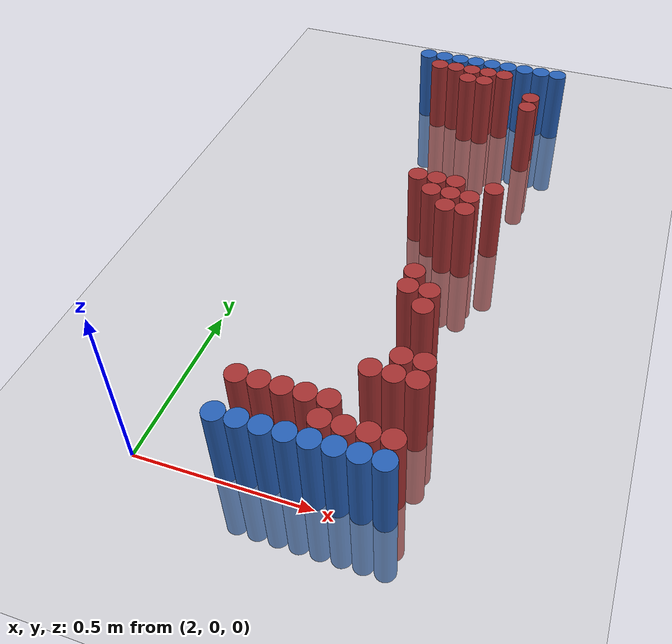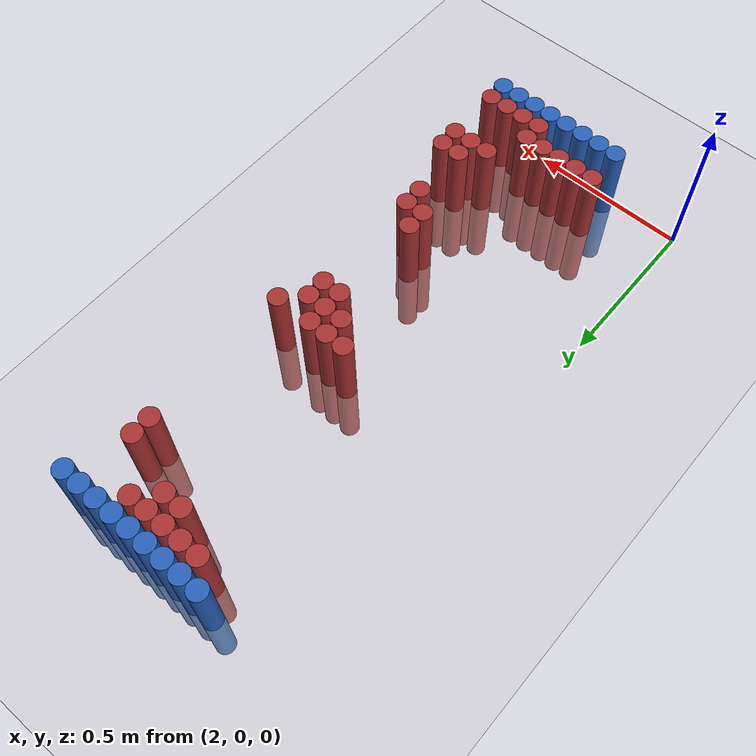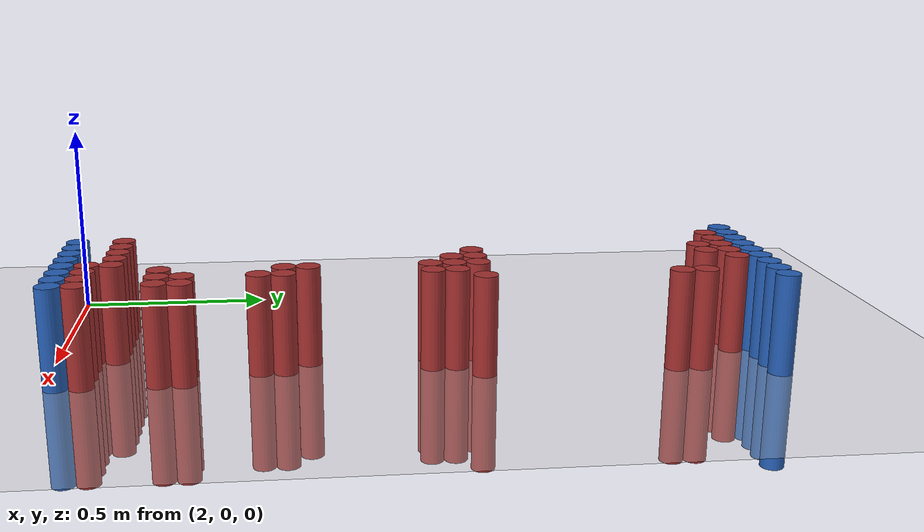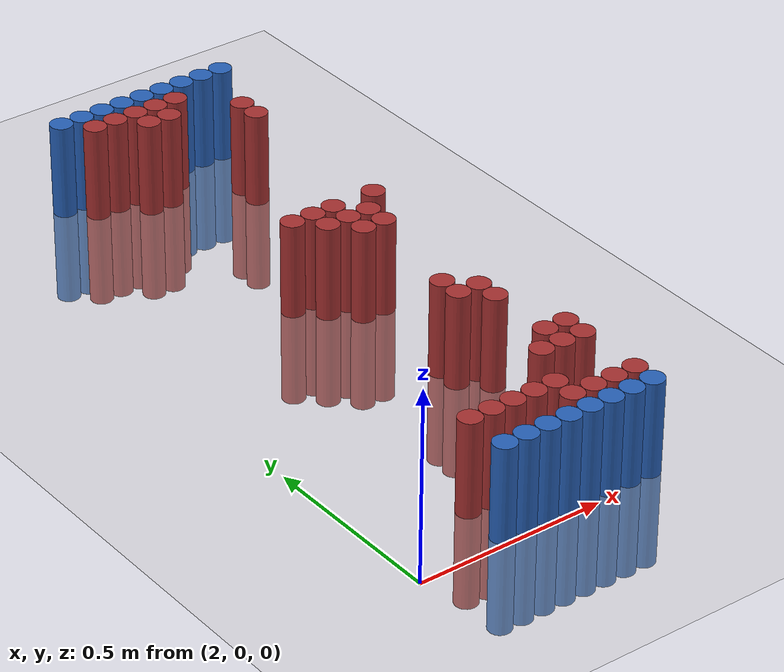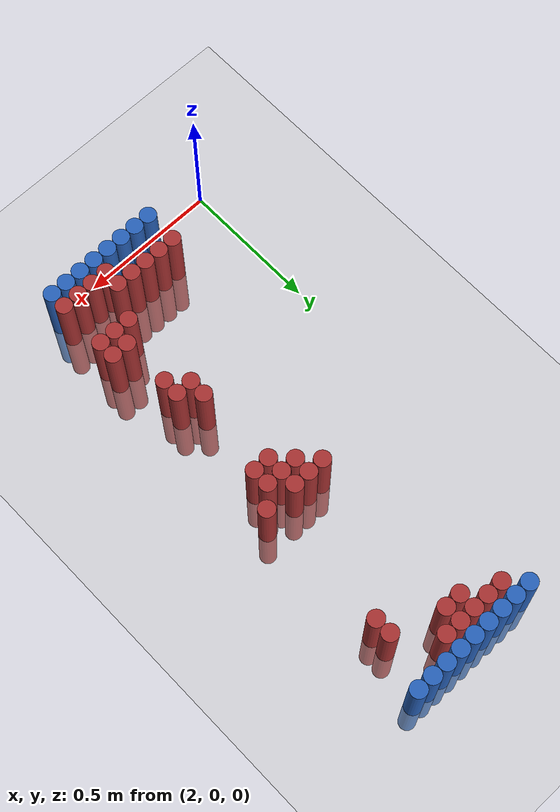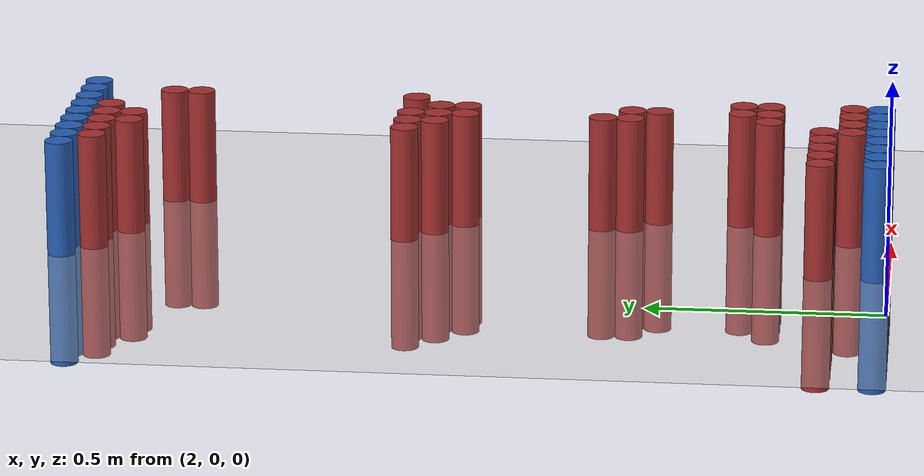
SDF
<sdf version="1.6">
 <world name="default">
  <model name="ground_plane">
   <static>1</static>
   <link name="link">
    <collision name="collision">
     <geometry><plane><normal>0 0 1</normal><size>100 100</size></plane></geometry>
     <surface><friction><ode><mu>100</mu><mu2>50</mu2></ode></friction></surface>
    </collision>
    <visual name="visual">
     <cast_shadows>0</cast_shadows>
     <geometry><plane><normal>0 0 1</normal><size>100 100</size></plane></geometry>
     <material>
      <script><uri>file://media/materials/scripts/gazebo.material</uri><name>Gazebo/Grey</name></script>
     </material>
    </visual>
   </link>
  </model>
  <model name="unit_cylinder_98">
   <static>1</static>
   <pose>2.250000 1.770000 0.000000 0.000000 0.000000 0.000000</pose>
   <link name="link">
    <inertial>
     <mass>1</mass>
     <inertia><ixx>0.145833</ixx><ixy>0</ixy><ixz>0</ixz><iyy>0.145833</iyy><iyz>0</iyz><izz>0.125</izz></inertia>
    </inertial>
    <collision name="collision">
     <geometry><cylinder><radius>0.030000</radius><length>0.5</length></cylinder></geometry>
    </collision>
    <visual name="visual">
     <geometry><cylinder><radius>0.030000</radius><length>0.5</length></cylinder></geometry>
     <material>
      <ambient>0.152000 0.379000 0.720000 1</ambient>
      <diffuse>0.152000 0.379000 0.720000 1</diffuse>
     </material>
     <material>
      <script><name>Gazebo/Grey</name><uri>file://media/materials/scripts/gazebo.material</uri></script>
     </material>
    </visual>
   </link>
  </model>
  <model name="unit_cylinder_99">
   <static>1</static>
   <pose>2.310000 1.770000 0.000000 0.000000 0.000000 0.000000</pose>
   <link name="link">
    <inertial>
     <mass>1</mass>
     <inertia><ixx>0.145833</ixx><ixy>0</ixy><ixz>0</ixz><iyy>0.145833</iyy><iyz>0</iyz><izz>0.125</izz></inertia>
    </inertial>
    <collision name="collision">
     <geometry><cylinder><radius>0.030000</radius><length>0.5</length></cylinder></geometry>
    </collision>
    <visual name="visual">
     <geometry><cylinder><radius>0.030000</radius><length>0.5</length></cylinder></geometry>
     <material>
      <ambient>0.152000 0.379000 0.720000 1</ambient>
      <diffuse>0.152000 0.379000 0.720000 1</diffuse>
     </material>
     <material>
      <script><name>Gazebo/Grey</name><uri>file://media/materials/scripts/gazebo.material</uri></script>
     </material>
    </visual>
   </link>
  </model>
  <model name="unit_cylinder_100">
   <static>1</static>
   <pose>2.370000 1.770000 0.000000 0.000000 0.000000 0.000000</pose>
   <link name="link">
    <inertial>
     <mass>1</mass>
     <inertia><ixx>0.145833</ixx><ixy>0</ixy><ixz>0</ixz><iyy>0.145833</iyy><iyz>0</iyz><izz>0.125</izz></inertia>
    </inertial>
    <collision name="collision">
     <geometry><cylinder><radius>0.030000</radius><length>0.5</length></cylinder></geometry>
    </collision>
    <visual name="visual">
     <geometry><cylinder><radius>0.030000</radius><length>0.5</length></cylinder></geometry>
     <material>
      <ambient>0.152000 0.379000 0.720000 1</ambient>
      <diffuse>0.152000 0.379000 0.720000 1</diffuse>
     </material>
     <material>
      <script><name>Gazebo/Grey</name><uri>file://media/materials/scripts/gazebo.material</uri></script>
     </material>
    </visual>
   </link>
  </model>
  <model name="unit_cylinder_101">
   <static>1</static>
   <pose>2.430000 1.770000 0.000000 0.000000 0.000000 0.000000</pose>
   <link name="link">
    <inertial>
     <mass>1</mass>
     <inertia><ixx>0.145833</ixx><ixy>0</ixy><ixz>0</ixz><iyy>0.145833</iyy><iyz>0</iyz><izz>0.125</izz></inertia>
    </inertial>
    <collision name="collision">
     <geometry><cylinder><radius>0.030000</radius><length>0.5</length></cylinder></geometry>
    </collision>
    <visual name="visual">
     <geometry><cylinder><radius>0.030000</radius><length>0.5</length></cylinder></geometry>
     <material>
      <ambient>0.152000 0.379000 0.720000 1</ambient>
      <diffuse>0.152000 0.379000 0.720000 1</diffuse>
     </material>
     <material>
      <script><name>Gazebo/Grey</name><uri>file://media/materials/scripts/gazebo.material</uri></script>
     </material>
    </visual>
   </link>
  </model>
  <model name="unit_cylinder_102">
   <static>1</static>
   <pose>2.490000 1.770000 0.000000 0.000000 0.000000 0.000000</pose>
   <link name="link">
    <inertial>
     <mass>1</mass>
     <inertia><ixx>0.145833</ixx><ixy>0</ixy><ixz>0</ixz><iyy>0.145833</iyy><iyz>0</iyz><izz>0.125</izz></inertia>
    </inertial>
    <collision name="collision">
     <geometry><cylinder><radius>0.030000</radius><length>0.5</length></cylinder></geometry>
    </collision>
    <visual name="visual">
     <geometry><cylinder><radius>0.030000</radius><length>0.5</length></cylinder></geometry>
     <material>
      <ambient>0.152000 0.379000 0.720000 1</ambient>
      <diffuse>0.152000 0.379000 0.720000 1</diffuse>
     </material>
     <material>
      <script><name>Gazebo/Grey</name><uri>file://media/materials/scripts/gazebo.material</uri></script>
     </material>
    </visual>
   </link>
  </model>
  <model name="unit_cylinder_103">
   <static>1</static>
   <pose>2.550000 1.770000 0.000000 0.000000 0.000000 0.000000</pose>
   <link name="link">
    <inertial>
     <mass>1</mass>
     <inertia><ixx>0.145833</ixx><ixy>0</ixy><ixz>0</ixz><iyy>0.145833</iyy><iyz>0</iyz><izz>0.125</izz></inertia>
    </inertial>
    <collision name="collision">
     <geometry><cylinder><radius>0.030000</radius><length>0.5</length></cylinder></geometry>
    </collision>
    <visual name="visual">
     <geometry><cylinder><radius>0.030000</radius><length>0.5</length></cylinder></geometry>
     <material>
      <ambient>0.152000 0.379000 0.720000 1</ambient>
      <diffuse>0.152000 0.379000 0.720000 1</diffuse>
     </material>
     <material>
      <script><name>Gazebo/Grey</name><uri>file://media/materials/scripts/gazebo.material</uri></script>
     </material>
    </visual>
   </link>
  </model>
  <model name="unit_cylinder_104">
   <static>1</static>
   <pose>2.610000 1.770000 0.000000 0.000000 0.000000 0.000000</pose>
   <link name="link">
    <inertial>
     <mass>1</mass>
     <inertia><ixx>0.145833</ixx><ixy>0</ixy><ixz>0</ixz><iyy>0.145833</iyy><iyz>0</iyz><izz>0.125</izz></inertia>
    </inertial>
    <collision name="collision">
     <geometry><cylinder><radius>0.030000</radius><length>0.5</length></cylinder></geometry>
    </collision>
    <visual name="visual">
     <geometry><cylinder><radius>0.030000</radius><length>0.5</length></cylinder></geometry>
     <material>
      <ambient>0.152000 0.379000 0.720000 1</ambient>
      <diffuse>0.152000 0.379000 0.720000 1</diffuse>
     </material>
     <material>
      <script><name>Gazebo/Grey</name><uri>file://media/materials/scripts/gazebo.material</uri></script>
     </material>
    </visual>
   </link>
  </model>
  <model name="unit_cylinder_105">
   <static>1</static>
   <pose>2.670000 1.770000 0.000000 0.000000 0.000000 0.000000</pose>
   <link name="link">
    <inertial>
     <mass>1</mass>
     <inertia><ixx>0.145833</ixx><ixy>0</ixy><ixz>0</ixz><iyy>0.145833</iyy><iyz>0</iyz><izz>0.125</izz></inertia>
    </inertial>
    <collision name="collision">
     <geometry><cylinder><radius>0.030000</radius><length>0.5</length></cylinder></geometry>
    </collision>
    <visual name="visual">
     <geometry><cylinder><radius>0.030000</radius><length>0.5</length></cylinder></geometry>
     <material>
      <ambient>0.152000 0.379000 0.720000 1</ambient>
      <diffuse>0.152000 0.379000 0.720000 1</diffuse>
     </material>
     <material>
      <script><name>Gazebo/Grey</name><uri>file://media/materials/scripts/gazebo.material</uri></script>
     </material>
    </visual>
   </link>
  </model>
  <model name="unit_cylinder_106">
   <static>1</static>
   <pose>2.730000 1.770000 0.000000 0.000000 0.000000 0.000000</pose>
   <link name="link">
    <inertial>
     <mass>1</mass>
     <inertia><ixx>0.145833</ixx><ixy>0</ixy><ixz>0</ixz><iyy>0.145833</iyy><iyz>0</iyz><izz>0.125</izz></inertia>
    </inertial>
    <collision name="collision">
     <geometry><cylinder><radius>0.030000</radius><length>0.5</length></cylinder></geometry>
    </collision>
    <visual name="visual">
     <geometry><cylinder><radius>0.030000</radius><length>0.5</length></cylinder></geometry>
     <material>
      <ambient>0.152000 0.379000 0.720000 1</ambient>
      <diffuse>0.152000 0.379000 0.720000 1</diffuse>
     </material>
     <material>
      <script><name>Gazebo/Grey</name><uri>file://media/materials/scripts/gazebo.material</uri></script>
     </material>
    </visual>
   </link>
  </model>
  <model name="unit_cylinder_126">
   <static>1</static>
   <pose>2.310000 1.710000 0.000000 0.000000 0.000000 0.000000</pose>
   <link name="link">
    <inertial>
     <mass>1</mass>
     <inertia><ixx>0.145833</ixx><ixy>0</ixy><ixz>0</ixz><iyy>0.145833</iyy><iyz>0</iyz><izz>0.125</izz></inertia>
    </inertial>
    <collision name="collision">
     <geometry><cylinder><radius>0.030000</radius><length>0.5</length></cylinder></geometry>
    </collision>
    <visual name="visual">
     <geometry><cylinder><radius>0.030000</radius><length>0.5</length></cylinder></geometry>
     <material>
      <ambient>0.648000 0.192000 0.192000 1</ambient>
      <diffuse>0.648000 0.192000 0.192000 1</diffuse>
     </material>
     <material>
      <script><name>Gazebo/Grey</name><uri>file://media/materials/scripts/gazebo.material</uri></script>
     </material>
    </visual>
   </link>
  </model>
  <model name="unit_cylinder_127">
   <static>1</static>
   <pose>2.370000 1.710000 0.000000 0.000000 0.000000 0.000000</pose>
   <link name="link">
    <inertial>
     <mass>1</mass>
     <inertia><ixx>0.145833</ixx><ixy>0</ixy><ixz>0</ixz><iyy>0.145833</iyy><iyz>0</iyz><izz>0.125</izz></inertia>
    </inertial>
    <collision name="collision">
     <geometry><cylinder><radius>0.030000</radius><length>0.5</length></cylinder></geometry>
    </collision>
    <visual name="visual">
     <geometry><cylinder><radius>0.030000</radius><length>0.5</length></cylinder></geometry>
     <material>
      <ambient>0.648000 0.192000 0.192000 1</ambient>
      <diffuse>0.648000 0.192000 0.192000 1</diffuse>
     </material>
     <material>
      <script><name>Gazebo/Grey</name><uri>file://media/materials/scripts/gazebo.material</uri></script>
     </material>
    </visual>
   </link>
  </model>
  <model name="unit_cylinder_128">
   <static>1</static>
   <pose>2.430000 1.710000 0.000000 0.000000 0.000000 0.000000</pose>
   <link name="link">
    <inertial>
     <mass>1</mass>
     <inertia><ixx>0.145833</ixx><ixy>0</ixy><ixz>0</ixz><iyy>0.145833</iyy><iyz>0</iyz><izz>0.125</izz></inertia>
    </inertial>
    <collision name="collision">
     <geometry><cylinder><radius>0.030000</radius><length>0.5</length></cylinder></geometry>
    </collision>
    <visual name="visual">
     <geometry><cylinder><radius>0.030000</radius><length>0.5</length></cylinder></geometry>
     <material>
      <ambient>0.648000 0.192000 0.192000 1</ambient>
      <diffuse>0.648000 0.192000 0.192000 1</diffuse>
     </material>
     <material>
      <script><name>Gazebo/Grey</name><uri>file://media/materials/scripts/gazebo.material</uri></script>
     </material>
    </visual>
   </link>
  </model>
  <model name="unit_cylinder_129">
   <static>1</static>
   <pose>2.490000 1.710000 0.000000 0.000000 0.000000 0.000000</pose>
   <link name="link">
    <inertial>
     <mass>1</mass>
     <inertia><ixx>0.145833</ixx><ixy>0</ixy><ixz>0</ixz><iyy>0.145833</iyy><iyz>0</iyz><izz>0.125</izz></inertia>
    </inertial>
    <collision name="collision">
     <geometry><cylinder><radius>0.030000</radius><length>0.5</length></cylinder></geometry>
    </collision>
    <visual name="visual">
     <geometry><cylinder><radius>0.030000</radius><length>0.5</length></cylinder></geometry>
     <material>
      <ambient>0.648000 0.192000 0.192000 1</ambient>
      <diffuse>0.648000 0.192000 0.192000 1</diffuse>
     </material>
     <material>
      <script><name>Gazebo/Grey</name><uri>file://media/materials/scripts/gazebo.material</uri></script>
     </material>
    </visual>
   </link>
  </model>
  <model name="unit_cylinder_130">
   <static>1</static>
   <pose>2.550000 1.710000 0.000000 0.000000 0.000000 0.000000</pose>
   <link name="link">
    <inertial>
     <mass>1</mass>
     <inertia><ixx>0.145833</ixx><ixy>0</ixy><ixz>0</ixz><iyy>0.145833</iyy><iyz>0</iyz><izz>0.125</izz></inertia>
    </inertial>
    <collision name="collision">
     <geometry><cylinder><radius>0.030000</radius><length>0.5</length></cylinder></geometry>
    </collision>
    <visual name="visual">
     <geometry><cylinder><radius>0.030000</radius><length>0.5</length></cylinder></geometry>
     <material>
      <ambient>0.648000 0.192000 0.192000 1</ambient>
      <diffuse>0.648000 0.192000 0.192000 1</diffuse>
     </material>
     <material>
      <script><name>Gazebo/Grey</name><uri>file://media/materials/scripts/gazebo.material</uri></script>
     </material>
    </visual>
   </link>
  </model>
  <model name="unit_cylinder_135">
   <static>1</static>
   <pose>2.430000 1.650000 0.000000 0.000000 0.000000 0.000000</pose>
   <link name="link">
    <inertial>
     <mass>1</mass>
     <inertia><ixx>0.145833</ixx><ixy>0</ixy><ixz>0</ixz><iyy>0.145833</iyy><iyz>0</iyz><izz>0.125</izz></inertia>
    </inertial>
    <collision name="collision">
     <geometry><cylinder><radius>0.030000</radius><length>0.5</length></cylinder></geometry>
    </collision>
    <visual name="visual">
     <geometry><cylinder><radius>0.030000</radius><length>0.5</length></cylinder></geometry>
     <material>
      <ambient>0.648000 0.192000 0.192000 1</ambient>
      <diffuse>0.648000 0.192000 0.192000 1</diffuse>
     </material>
     <material>
      <script><name>Gazebo/Grey</name><uri>file://media/materials/scripts/gazebo.material</uri></script>
     </material>
    </visual>
   </link>
  </model>
  <model name="unit_cylinder_136">
   <static>1</static>
   <pose>2.490000 1.650000 0.000000 0.000000 0.000000 0.000000</pose>
   <link name="link">
    <inertial>
     <mass>1</mass>
     <inertia><ixx>0.145833</ixx><ixy>0</ixy><ixz>0</ixz><iyy>0.145833</iyy><iyz>0</iyz><izz>0.125</izz></inertia>
    </inertial>
    <collision name="collision">
     <geometry><cylinder><radius>0.030000</radius><length>0.5</length></cylinder></geometry>
    </collision>
    <visual name="visual">
     <geometry><cylinder><radius>0.030000</radius><length>0.5</length></cylinder></geometry>
     <material>
      <ambient>0.648000 0.192000 0.192000 1</ambient>
      <diffuse>0.648000 0.192000 0.192000 1</diffuse>
     </material>
     <material>
      <script><name>Gazebo/Grey</name><uri>file://media/materials/scripts/gazebo.material</uri></script>
     </material>
    </visual>
   </link>
  </model>
  <model name="unit_cylinder_145">
   <static>1</static>
   <pose>2.670000 1.590000 0.000000 0.000000 0.000000 0.000000</pose>
   <link name="link">
    <inertial>
     <mass>1</mass>
     <inertia><ixx>0.145833</ixx><ixy>0</ixy><ixz>0</ixz><iyy>0.145833</iyy><iyz>0</iyz><izz>0.125</izz></inertia>
    </inertial>
    <collision name="collision">
     <geometry><cylinder><radius>0.030000</radius><length>0.5</length></cylinder></geometry>
    </collision>
    <visual name="visual">
     <geometry><cylinder><radius>0.030000</radius><length>0.5</length></cylinder></geometry>
     <material>
      <ambient>0.648000 0.192000 0.192000 1</ambient>
      <diffuse>0.648000 0.192000 0.192000 1</diffuse>
     </material>
     <material>
      <script><name>Gazebo/Grey</name><uri>file://media/materials/scripts/gazebo.material</uri></script>
     </material>
    </visual>
   </link>
  </model>
  <model name="unit_cylinder_155">
   <static>1</static>
   <pose>2.670000 1.530000 0.000000 0.000000 0.000000 0.000000</pose>
   <link name="link">
    <inertial>
     <mass>1</mass>
     <inertia><ixx>0.145833</ixx><ixy>0</ixy><ixz>0</ixz><iyy>0.145833</iyy><iyz>0</iyz><izz>0.125</izz></inertia>
    </inertial>
    <collision name="collision">
     <geometry><cylinder><radius>0.030000</radius><length>0.5</length></cylinder></geometry>
    </collision>
    <visual name="visual">
     <geometry><cylinder><radius>0.030000</radius><length>0.5</length></cylinder></geometry>
     <material>
      <ambient>0.648000 0.192000 0.192000 1</ambient>
      <diffuse>0.648000 0.192000 0.192000 1</diffuse>
     </material>
     <material>
      <script><name>Gazebo/Grey</name><uri>file://media/materials/scripts/gazebo.material</uri></script>
     </material>
    </visual>
   </link>
  </model>
  <model name="unit_cylinder_170">
   <static>1</static>
   <pose>2.430000 1.050000 0.000000 0.000000 0.000000 0.000000</pose>
   <link name="link">
    <inertial>
     <mass>1</mass>
     <inertia><ixx>0.145833</ixx><ixy>0</ixy><ixz>0</ixz><iyy>0.145833</iyy><iyz>0</iyz><izz>0.125</izz></inertia>
    </inertial>
    <collision name="collision">
     <geometry><cylinder><radius>0.030000</radius><length>0.5</length></cylinder></geometry>
    </collision>
    <visual name="visual">
     <geometry><cylinder><radius>0.030000</radius><length>0.5</length></cylinder></geometry>
     <material>
      <ambient>0.648000 0.192000 0.192000 1</ambient>
      <diffuse>0.648000 0.192000 0.192000 1</diffuse>
     </material>
     <material>
      <script><name>Gazebo/Grey</name><uri>file://media/materials/scripts/gazebo.material</uri></script>
     </material>
    </visual>
   </link>
  </model>
  <model name="unit_cylinder_171">
   <static>1</static>
   <pose>2.490000 1.050000 0.000000 0.000000 0.000000 0.000000</pose>
   <link name="link">
    <inertial>
     <mass>1</mass>
     <inertia><ixx>0.145833</ixx><ixy>0</ixy><ixz>0</ixz><iyy>0.145833</iyy><iyz>0</iyz><izz>0.125</izz></inertia>
    </inertial>
    <collision name="collision">
     <geometry><cylinder><radius>0.030000</radius><length>0.5</length></cylinder></geometry>
    </collision>
    <visual name="visual">
     <geometry><cylinder><radius>0.030000</radius><length>0.5</length></cylinder></geometry>
     <material>
      <ambient>0.648000 0.192000 0.192000 1</ambient>
      <diffuse>0.648000 0.192000 0.192000 1</diffuse>
     </material>
     <material>
      <script><name>Gazebo/Grey</name><uri>file://media/materials/scripts/gazebo.material</uri></script>
     </material>
    </visual>
   </link>
  </model>
  <model name="unit_cylinder_172">
   <static>1</static>
   <pose>2.550000 1.050000 0.000000 0.000000 0.000000 0.000000</pose>
   <link name="link">
    <inertial>
     <mass>1</mass>
     <inertia><ixx>0.145833</ixx><ixy>0</ixy><ixz>0</ixz><iyy>0.145833</iyy><iyz>0</iyz><izz>0.125</izz></inertia>
    </inertial>
    <collision name="collision">
     <geometry><cylinder><radius>0.030000</radius><length>0.5</length></cylinder></geometry>
    </collision>
    <visual name="visual">
     <geometry><cylinder><radius>0.030000</radius><length>0.5</length></cylinder></geometry>
     <material>
      <ambient>0.648000 0.192000 0.192000 1</ambient>
      <diffuse>0.648000 0.192000 0.192000 1</diffuse>
     </material>
     <material>
      <script><name>Gazebo/Grey</name><uri>file://media/materials/scripts/gazebo.material</uri></script>
     </material>
    </visual>
   </link>
  </model>
  <model name="unit_cylinder_173">
   <static>1</static>
   <pose>2.670000 1.050000 0.000000 0.000000 0.000000 0.000000</pose>
   <link name="link">
    <inertial>
     <mass>1</mass>
     <inertia><ixx>0.145833</ixx><ixy>0</ixy><ixz>0</ixz><iyy>0.145833</iyy><iyz>0</iyz><izz>0.125</izz></inertia>
    </inertial>
    <collision name="collision">
     <geometry><cylinder><radius>0.030000</radius><length>0.5</length></cylinder></geometry>
    </collision>
    <visual name="visual">
     <geometry><cylinder><radius>0.030000</radius><length>0.5</length></cylinder></geometry>
     <material>
      <ambient>0.648000 0.192000 0.192000 1</ambient>
      <diffuse>0.648000 0.192000 0.192000 1</diffuse>
     </material>
     <material>
      <script><name>Gazebo/Grey</name><uri>file://media/materials/scripts/gazebo.material</uri></script>
     </material>
    </visual>
   </link>
  </model>
  <model name="unit_cylinder_177">
   <static>1</static>
   <pose>2.490000 0.990000 0.000000 0.000000 0.000000 0.000000</pose>
   <link name="link">
    <inertial>
     <mass>1</mass>
     <inertia><ixx>0.145833</ixx><ixy>0</ixy><ixz>0</ixz><iyy>0.145833</iyy><iyz>0</iyz><izz>0.125</izz></inertia>
    </inertial>
    <collision name="collision">
     <geometry><cylinder><radius>0.030000</radius><length>0.5</length></cylinder></geometry>
    </collision>
    <visual name="visual">
     <geometry><cylinder><radius>0.030000</radius><length>0.5</length></cylinder></geometry>
     <material>
      <ambient>0.648000 0.192000 0.192000 1</ambient>
      <diffuse>0.648000 0.192000 0.192000 1</diffuse>
     </material>
     <material>
      <script><name>Gazebo/Grey</name><uri>file://media/materials/scripts/gazebo.material</uri></script>
     </material>
    </visual>
   </link>
  </model>
  <model name="unit_cylinder_178">
   <static>1</static>
   <pose>2.550000 0.990000 0.000000 0.000000 0.000000 0.000000</pose>
   <link name="link">
    <inertial>
     <mass>1</mass>
     <inertia><ixx>0.145833</ixx><ixy>0</ixy><ixz>0</ixz><iyy>0.145833</iyy><iyz>0</iyz><izz>0.125</izz></inertia>
    </inertial>
    <collision name="collision">
     <geometry><cylinder><radius>0.030000</radius><length>0.5</length></cylinder></geometry>
    </collision>
    <visual name="visual">
     <geometry><cylinder><radius>0.030000</radius><length>0.5</length></cylinder></geometry>
     <material>
      <ambient>0.648000 0.192000 0.192000 1</ambient>
      <diffuse>0.648000 0.192000 0.192000 1</diffuse>
     </material>
     <material>
      <script><name>Gazebo/Grey</name><uri>file://media/materials/scripts/gazebo.material</uri></script>
     </material>
    </visual>
   </link>
  </model>
  <model name="unit_cylinder_179">
   <static>1</static>
   <pose>2.610000 0.990000 0.000000 0.000000 0.000000 0.000000</pose>
   <link name="link">
    <inertial>
     <mass>1</mass>
     <inertia><ixx>0.145833</ixx><ixy>0</ixy><ixz>0</ixz><iyy>0.145833</iyy><iyz>0</iyz><izz>0.125</izz></inertia>
    </inertial>
    <collision name="collision">
     <geometry><cylinder><radius>0.030000</radius><length>0.5</length></cylinder></geometry>
    </collision>
    <visual name="visual">
     <geometry><cylinder><radius>0.030000</radius><length>0.5</length></cylinder></geometry>
     <material>
      <ambient>0.648000 0.192000 0.192000 1</ambient>
      <diffuse>0.648000 0.192000 0.192000 1</diffuse>
     </material>
     <material>
      <script><name>Gazebo/Grey</name><uri>file://media/materials/scripts/gazebo.material</uri></script>
     </material>
    </visual>
   </link>
  </model>
  <model name="unit_cylinder_182">
   <static>1</static>
   <pose>2.550000 0.930000 0.000000 0.000000 0.000000 0.000000</pose>
   <link name="link">
    <inertial>
     <mass>1</mass>
     <inertia><ixx>0.145833</ixx><ixy>0</ixy><ixz>0</ixz><iyy>0.145833</iyy><iyz>0</iyz><izz>0.125</izz></inertia>
    </inertial>
    <collision name="collision">
     <geometry><cylinder><radius>0.030000</radius><length>0.5</length></cylinder></geometry>
    </collision>
    <visual name="visual">
     <geometry><cylinder><radius>0.030000</radius><length>0.5</length></cylinder></geometry>
     <material>
      <ambient>0.648000 0.192000 0.192000 1</ambient>
      <diffuse>0.648000 0.192000 0.192000 1</diffuse>
     </material>
     <material>
      <script><name>Gazebo/Grey</name><uri>file://media/materials/scripts/gazebo.material</uri></script>
     </material>
    </visual>
   </link>
  </model>
  <model name="unit_cylinder_183">
   <static>1</static>
   <pose>2.610000 0.930000 0.000000 0.000000 0.000000 0.000000</pose>
   <link name="link">
    <inertial>
     <mass>1</mass>
     <inertia><ixx>0.145833</ixx><ixy>0</ixy><ixz>0</ixz><iyy>0.145833</iyy><iyz>0</iyz><izz>0.125</izz></inertia>
    </inertial>
    <collision name="collision">
     <geometry><cylinder><radius>0.030000</radius><length>0.5</length></cylinder></geometry>
    </collision>
    <visual name="visual">
     <geometry><cylinder><radius>0.030000</radius><length>0.5</length></cylinder></geometry>
     <material>
      <ambient>0.648000 0.192000 0.192000 1</ambient>
      <diffuse>0.648000 0.192000 0.192000 1</diffuse>
     </material>
     <material>
      <script><name>Gazebo/Grey</name><uri>file://media/materials/scripts/gazebo.material</uri></script>
     </material>
    </visual>
   </link>
  </model>
  <model name="unit_cylinder_204">
   <static>1</static>
   <pose>2.550000 0.630000 0.000000 0.000000 0.000000 0.000000</pose>
   <link name="link">
    <inertial>
     <mass>1</mass>
     <inertia><ixx>0.145833</ixx><ixy>0</ixy><ixz>0</ixz><iyy>0.145833</iyy><iyz>0</iyz><izz>0.125</izz></inertia>
    </inertial>
    <collision name="collision">
     <geometry><cylinder><radius>0.030000</radius><length>0.5</length></cylinder></geometry>
    </collision>
    <visual name="visual">
     <geometry><cylinder><radius>0.030000</radius><length>0.5</length></cylinder></geometry>
     <material>
      <ambient>0.648000 0.192000 0.192000 1</ambient>
      <diffuse>0.648000 0.192000 0.192000 1</diffuse>
     </material>
     <material>
      <script><name>Gazebo/Grey</name><uri>file://media/materials/scripts/gazebo.material</uri></script>
     </material>
    </visual>
   </link>
  </model>
  <model name="unit_cylinder_208">
   <static>1</static>
   <pose>2.550000 0.570000 0.000000 0.000000 0.000000 0.000000</pose>
   <link name="link">
    <inertial>
     <mass>1</mass>
     <inertia><ixx>0.145833</ixx><ixy>0</ixy><ixz>0</ixz><iyy>0.145833</iyy><iyz>0</iyz><izz>0.125</izz></inertia>
    </inertial>
    <collision name="collision">
     <geometry><cylinder><radius>0.030000</radius><length>0.5</length></cylinder></geometry>
    </collision>
    <visual name="visual">
     <geometry><cylinder><radius>0.030000</radius><length>0.5</length></cylinder></geometry>
     <material>
      <ambient>0.648000 0.192000 0.192000 1</ambient>
      <diffuse>0.648000 0.192000 0.192000 1</diffuse>
     </material>
     <material>
      <script><name>Gazebo/Grey</name><uri>file://media/materials/scripts/gazebo.material</uri></script>
     </material>
    </visual>
   </link>
  </model>
  <model name="unit_cylinder_209">
   <static>1</static>
   <pose>2.610000 0.570000 0.000000 0.000000 0.000000 0.000000</pose>
   <link name="link">
    <inertial>
     <mass>1</mass>
     <inertia><ixx>0.145833</ixx><ixy>0</ixy><ixz>0</ixz><iyy>0.145833</iyy><iyz>0</iyz><izz>0.125</izz></inertia>
    </inertial>
    <collision name="collision">
     <geometry><cylinder><radius>0.030000</radius><length>0.5</length></cylinder></geometry>
    </collision>
    <visual name="visual">
     <geometry><cylinder><radius>0.030000</radius><length>0.5</length></cylinder></geometry>
     <material>
      <ambient>0.648000 0.192000 0.192000 1</ambient>
      <diffuse>0.648000 0.192000 0.192000 1</diffuse>
     </material>
     <material>
      <script><name>Gazebo/Grey</name><uri>file://media/materials/scripts/gazebo.material</uri></script>
     </material>
    </visual>
   </link>
  </model>
  <model name="unit_cylinder_219">
   <static>1</static>
   <pose>2.610000 0.510000 0.000000 0.000000 0.000000 0.000000</pose>
   <link name="link">
    <inertial>
     <mass>1</mass>
     <inertia><ixx>0.145833</ixx><ixy>0</ixy><ixz>0</ixz><iyy>0.145833</iyy><iyz>0</iyz><izz>0.125</izz></inertia>
    </inertial>
    <collision name="collision">
     <geometry><cylinder><radius>0.030000</radius><length>0.5</length></cylinder></geometry>
    </collision>
    <visual name="visual">
     <geometry><cylinder><radius>0.030000</radius><length>0.5</length></cylinder></geometry>
     <material>
      <ambient>0.648000 0.192000 0.192000 1</ambient>
      <diffuse>0.648000 0.192000 0.192000 1</diffuse>
     </material>
     <material>
      <script><name>Gazebo/Grey</name><uri>file://media/materials/scripts/gazebo.material</uri></script>
     </material>
    </visual>
   </link>
  </model>
  <model name="unit_cylinder_236">
   <static>1</static>
   <pose>2.610000 0.330000 0.000000 0.000000 0.000000 0.000000</pose>
   <link name="link">
    <inertial>
     <mass>1</mass>
     <inertia><ixx>0.145833</ixx><ixy>0</ixy><ixz>0</ixz><iyy>0.145833</iyy><iyz>0</iyz><izz>0.125</izz></inertia>
    </inertial>
    <collision name="collision">
     <geometry><cylinder><radius>0.030000</radius><length>0.5</length></cylinder></geometry>
    </collision>
    <visual name="visual">
     <geometry><cylinder><radius>0.030000</radius><length>0.5</length></cylinder></geometry>
     <material>
      <ambient>0.648000 0.192000 0.192000 1</ambient>
      <diffuse>0.648000 0.192000 0.192000 1</diffuse>
     </material>
     <material>
      <script><name>Gazebo/Grey</name><uri>file://media/materials/scripts/gazebo.material</uri></script>
     </material>
    </visual>
   </link>
  </model>
  <model name="unit_cylinder_237">
   <static>1</static>
   <pose>2.670000 0.330000 0.000000 0.000000 0.000000 0.000000</pose>
   <link name="link">
    <inertial>
     <mass>1</mass>
     <inertia><ixx>0.145833</ixx><ixy>0</ixy><ixz>0</ixz><iyy>0.145833</iyy><iyz>0</iyz><izz>0.125</izz></inertia>
    </inertial>
    <collision name="collision">
     <geometry><cylinder><radius>0.030000</radius><length>0.5</length></cylinder></geometry>
    </collision>
    <visual name="visual">
     <geometry><cylinder><radius>0.030000</radius><length>0.5</length></cylinder></geometry>
     <material>
      <ambient>0.648000 0.192000 0.192000 1</ambient>
      <diffuse>0.648000 0.192000 0.192000 1</diffuse>
     </material>
     <material>
      <script><name>Gazebo/Grey</name><uri>file://media/materials/scripts/gazebo.material</uri></script>
     </material>
    </visual>
   </link>
  </model>
  <model name="unit_cylinder_243">
   <static>1</static>
   <pose>2.550000 0.270000 0.000000 0.000000 0.000000 0.000000</pose>
   <link name="link">
    <inertial>
     <mass>1</mass>
     <inertia><ixx>0.145833</ixx><ixy>0</ixy><ixz>0</ixz><iyy>0.145833</iyy><iyz>0</iyz><izz>0.125</izz></inertia>
    </inertial>
    <collision name="collision">
     <geometry><cylinder><radius>0.030000</radius><length>0.5</length></cylinder></geometry>
    </collision>
    <visual name="visual">
     <geometry><cylinder><radius>0.030000</radius><length>0.5</length></cylinder></geometry>
     <material>
      <ambient>0.648000 0.192000 0.192000 1</ambient>
      <diffuse>0.648000 0.192000 0.192000 1</diffuse>
     </material>
     <material>
      <script><name>Gazebo/Grey</name><uri>file://media/materials/scripts/gazebo.material</uri></script>
     </material>
    </visual>
   </link>
  </model>
  <model name="unit_cylinder_244">
   <static>1</static>
   <pose>2.610000 0.270000 0.000000 0.000000 0.000000 0.000000</pose>
   <link name="link">
    <inertial>
     <mass>1</mass>
     <inertia><ixx>0.145833</ixx><ixy>0</ixy><ixz>0</ixz><iyy>0.145833</iyy><iyz>0</iyz><izz>0.125</izz></inertia>
    </inertial>
    <collision name="collision">
     <geometry><cylinder><radius>0.030000</radius><length>0.5</length></cylinder></geometry>
    </collision>
    <visual name="visual">
     <geometry><cylinder><radius>0.030000</radius><length>0.5</length></cylinder></geometry>
     <material>
      <ambient>0.648000 0.192000 0.192000 1</ambient>
      <diffuse>0.648000 0.192000 0.192000 1</diffuse>
     </material>
     <material>
      <script><name>Gazebo/Grey</name><uri>file://media/materials/scripts/gazebo.material</uri></script>
     </material>
    </visual>
   </link>
  </model>
  <model name="unit_cylinder_245">
   <static>1</static>
   <pose>2.670000 0.270000 0.000000 0.000000 0.000000 0.000000</pose>
   <link name="link">
    <inertial>
     <mass>1</mass>
     <inertia><ixx>0.145833</ixx><ixy>0</ixy><ixz>0</ixz><iyy>0.145833</iyy><iyz>0</iyz><izz>0.125</izz></inertia>
    </inertial>
    <collision name="collision">
     <geometry><cylinder><radius>0.030000</radius><length>0.5</length></cylinder></geometry>
    </collision>
    <visual name="visual">
     <geometry><cylinder><radius>0.030000</radius><length>0.5</length></cylinder></geometry>
     <material>
      <ambient>0.648000 0.192000 0.192000 1</ambient>
      <diffuse>0.648000 0.192000 0.192000 1</diffuse>
     </material>
     <material>
      <script><name>Gazebo/Grey</name><uri>file://media/materials/scripts/gazebo.material</uri></script>
     </material>
    </visual>
   </link>
  </model>
  <model name="unit_cylinder_263">
   <static>1</static>
   <pose>2.250000 0.150000 0.000000 0.000000 0.000000 0.000000</pose>
   <link name="link">
    <inertial>
     <mass>1</mass>
     <inertia><ixx>0.145833</ixx><ixy>0</ixy><ixz>0</ixz><iyy>0.145833</iyy><iyz>0</iyz><izz>0.125</izz></inertia>
    </inertial>
    <collision name="collision">
     <geometry><cylinder><radius>0.030000</radius><length>0.5</length></cylinder></geometry>
    </collision>
    <visual name="visual">
     <geometry><cylinder><radius>0.030000</radius><length>0.5</length></cylinder></geometry>
     <material>
      <ambient>0.648000 0.192000 0.192000 1</ambient>
      <diffuse>0.648000 0.192000 0.192000 1</diffuse>
     </material>
     <material>
      <script><name>Gazebo/Grey</name><uri>file://media/materials/scripts/gazebo.material</uri></script>
     </material>
    </visual>
   </link>
  </model>
  <model name="unit_cylinder_264">
   <static>1</static>
   <pose>2.310000 0.150000 0.000000 0.000000 0.000000 0.000000</pose>
   <link name="link">
    <inertial>
     <mass>1</mass>
     <inertia><ixx>0.145833</ixx><ixy>0</ixy><ixz>0</ixz><iyy>0.145833</iyy><iyz>0</iyz><izz>0.125</izz></inertia>
    </inertial>
    <collision name="collision">
     <geometry><cylinder><radius>0.030000</radius><length>0.5</length></cylinder></geometry>
    </collision>
    <visual name="visual">
     <geometry><cylinder><radius>0.030000</radius><length>0.5</length></cylinder></geometry>
     <material>
      <ambient>0.648000 0.192000 0.192000 1</ambient>
      <diffuse>0.648000 0.192000 0.192000 1</diffuse>
     </material>
     <material>
      <script><name>Gazebo/Grey</name><uri>file://media/materials/scripts/gazebo.material</uri></script>
     </material>
    </visual>
   </link>
  </model>
  <model name="unit_cylinder_265">
   <static>1</static>
   <pose>2.370000 0.150000 0.000000 0.000000 0.000000 0.000000</pose>
   <link name="link">
    <inertial>
     <mass>1</mass>
     <inertia><ixx>0.145833</ixx><ixy>0</ixy><ixz>0</ixz><iyy>0.145833</iyy><iyz>0</iyz><izz>0.125</izz></inertia>
    </inertial>
    <collision name="collision">
     <geometry><cylinder><radius>0.030000</radius><length>0.5</length></cylinder></geometry>
    </collision>
    <visual name="visual">
     <geometry><cylinder><radius>0.030000</radius><length>0.5</length></cylinder></geometry>
     <material>
      <ambient>0.648000 0.192000 0.192000 1</ambient>
      <diffuse>0.648000 0.192000 0.192000 1</diffuse>
     </material>
     <material>
      <script><name>Gazebo/Grey</name><uri>file://media/materials/scripts/gazebo.material</uri></script>
     </material>
    </visual>
   </link>
  </model>
  <model name="unit_cylinder_266">
   <static>1</static>
   <pose>2.430000 0.150000 0.000000 0.000000 0.000000 0.000000</pose>
   <link name="link">
    <inertial>
     <mass>1</mass>
     <inertia><ixx>0.145833</ixx><ixy>0</ixy><ixz>0</ixz><iyy>0.145833</iyy><iyz>0</iyz><izz>0.125</izz></inertia>
    </inertial>
    <collision name="collision">
     <geometry><cylinder><radius>0.030000</radius><length>0.5</length></cylinder></geometry>
    </collision>
    <visual name="visual">
     <geometry><cylinder><radius>0.030000</radius><length>0.5</length></cylinder></geometry>
     <material>
      <ambient>0.648000 0.192000 0.192000 1</ambient>
      <diffuse>0.648000 0.192000 0.192000 1</diffuse>
     </material>
     <material>
      <script><name>Gazebo/Grey</name><uri>file://media/materials/scripts/gazebo.material</uri></script>
     </material>
    </visual>
   </link>
  </model>
  <model name="unit_cylinder_267">
   <static>1</static>
   <pose>2.490000 0.150000 0.000000 0.000000 0.000000 0.000000</pose>
   <link name="link">
    <inertial>
     <mass>1</mass>
     <inertia><ixx>0.145833</ixx><ixy>0</ixy><ixz>0</ixz><iyy>0.145833</iyy><iyz>0</iyz><izz>0.125</izz></inertia>
    </inertial>
    <collision name="collision">
     <geometry><cylinder><radius>0.030000</radius><length>0.5</length></cylinder></geometry>
    </collision>
    <visual name="visual">
     <geometry><cylinder><radius>0.030000</radius><length>0.5</length></cylinder></geometry>
     <material>
      <ambient>0.648000 0.192000 0.192000 1</ambient>
      <diffuse>0.648000 0.192000 0.192000 1</diffuse>
     </material>
     <material>
      <script><name>Gazebo/Grey</name><uri>file://media/materials/scripts/gazebo.material</uri></script>
     </material>
    </visual>
   </link>
  </model>
  <model name="unit_cylinder_275">
   <static>1</static>
   <pose>2.490000 0.090000 0.000000 0.000000 0.000000 0.000000</pose>
   <link name="link">
    <inertial>
     <mass>1</mass>
     <inertia><ixx>0.145833</ixx><ixy>0</ixy><ixz>0</ixz><iyy>0.145833</iyy><iyz>0</iyz><izz>0.125</izz></inertia>
    </inertial>
    <collision name="collision">
     <geometry><cylinder><radius>0.030000</radius><length>0.5</length></cylinder></geometry>
    </collision>
    <visual name="visual">
     <geometry><cylinder><radius>0.030000</radius><length>0.5</length></cylinder></geometry>
     <material>
      <ambient>0.648000 0.192000 0.192000 1</ambient>
      <diffuse>0.648000 0.192000 0.192000 1</diffuse>
     </material>
     <material>
      <script><name>Gazebo/Grey</name><uri>file://media/materials/scripts/gazebo.material</uri></script>
     </material>
    </visual>
   </link>
  </model>
  <model name="unit_cylinder_276">
   <static>1</static>
   <pose>2.550000 0.090000 0.000000 0.000000 0.000000 0.000000</pose>
   <link name="link">
    <inertial>
     <mass>1</mass>
     <inertia><ixx>0.145833</ixx><ixy>0</ixy><ixz>0</ixz><iyy>0.145833</iyy><iyz>0</iyz><izz>0.125</izz></inertia>
    </inertial>
    <collision name="collision">
     <geometry><cylinder><radius>0.030000</radius><length>0.5</length></cylinder></geometry>
    </collision>
    <visual name="visual">
     <geometry><cylinder><radius>0.030000</radius><length>0.5</length></cylinder></geometry>
     <material>
      <ambient>0.648000 0.192000 0.192000 1</ambient>
      <diffuse>0.648000 0.192000 0.192000 1</diffuse>
     </material>
     <material>
      <script><name>Gazebo/Grey</name><uri>file://media/materials/scripts/gazebo.material</uri></script>
     </material>
    </visual>
   </link>
  </model>
  <model name="unit_cylinder_277">
   <static>1</static>
   <pose>2.610000 0.090000 0.000000 0.000000 0.000000 0.000000</pose>
   <link name="link">
    <inertial>
     <mass>1</mass>
     <inertia><ixx>0.145833</ixx><ixy>0</ixy><ixz>0</ixz><iyy>0.145833</iyy><iyz>0</iyz><izz>0.125</izz></inertia>
    </inertial>
    <collision name="collision">
     <geometry><cylinder><radius>0.030000</radius><length>0.5</length></cylinder></geometry>
    </collision>
    <visual name="visual">
     <geometry><cylinder><radius>0.030000</radius><length>0.5</length></cylinder></geometry>
     <material>
      <ambient>0.648000 0.192000 0.192000 1</ambient>
      <diffuse>0.648000 0.192000 0.192000 1</diffuse>
     </material>
     <material>
      <script><name>Gazebo/Grey</name><uri>file://media/materials/scripts/gazebo.material</uri></script>
     </material>
    </visual>
   </link>
  </model>
  <model name="unit_cylinder_278">
   <static>1</static>
   <pose>2.670000 0.090000 0.000000 0.000000 0.000000 0.000000</pose>
   <link name="link">
    <inertial>
     <mass>1</mass>
     <inertia><ixx>0.145833</ixx><ixy>0</ixy><ixz>0</ixz><iyy>0.145833</iyy><iyz>0</iyz><izz>0.125</izz></inertia>
    </inertial>
    <collision name="collision">
     <geometry><cylinder><radius>0.030000</radius><length>0.5</length></cylinder></geometry>
    </collision>
    <visual name="visual">
     <geometry><cylinder><radius>0.030000</radius><length>0.5</length></cylinder></geometry>
     <material>
      <ambient>0.648000 0.192000 0.192000 1</ambient>
      <diffuse>0.648000 0.192000 0.192000 1</diffuse>
     </material>
     <material>
      <script><name>Gazebo/Grey</name><uri>file://media/materials/scripts/gazebo.material</uri></script>
     </material>
    </visual>
   </link>
  </model>
  <model name="unit_cylinder_288">
   <static>1</static>
   <pose>2.250000 0.030000 0.000000 0.000000 0.000000 0.000000</pose>
   <link name="link">
    <inertial>
     <mass>1</mass>
     <inertia><ixx>0.145833</ixx><ixy>0</ixy><ixz>0</ixz><iyy>0.145833</iyy><iyz>0</iyz><izz>0.125</izz></inertia>
    </inertial>
    <collision name="collision">
     <geometry><cylinder><radius>0.030000</radius><length>0.5</length></cylinder></geometry>
    </collision>
    <visual name="visual">
     <geometry><cylinder><radius>0.030000</radius><length>0.5</length></cylinder></geometry>
     <material>
      <ambient>0.152000 0.379000 0.720000 1</ambient>
      <diffuse>0.152000 0.379000 0.720000 1</diffuse>
     </material>
     <material>
      <script><name>Gazebo/Grey</name><uri>file://media/materials/scripts/gazebo.material</uri></script>
     </material>
    </visual>
   </link>
  </model>
  <model name="unit_cylinder_289">
   <static>1</static>
   <pose>2.310000 0.030000 0.000000 0.000000 0.000000 0.000000</pose>
   <link name="link">
    <inertial>
     <mass>1</mass>
     <inertia><ixx>0.145833</ixx><ixy>0</ixy><ixz>0</ixz><iyy>0.145833</iyy><iyz>0</iyz><izz>0.125</izz></inertia>
    </inertial>
    <collision name="collision">
     <geometry><cylinder><radius>0.030000</radius><length>0.5</length></cylinder></geometry>
    </collision>
    <visual name="visual">
     <geometry><cylinder><radius>0.030000</radius><length>0.5</length></cylinder></geometry>
     <material>
      <ambient>0.152000 0.379000 0.720000 1</ambient>
      <diffuse>0.152000 0.379000 0.720000 1</diffuse>
     </material>
     <material>
      <script><name>Gazebo/Grey</name><uri>file://media/materials/scripts/gazebo.material</uri></script>
     </material>
    </visual>
   </link>
  </model>
  <model name="unit_cylinder_290">
   <static>1</static>
   <pose>2.370000 0.030000 0.000000 0.000000 0.000000 0.000000</pose>
   <link name="link">
    <inertial>
     <mass>1</mass>
     <inertia><ixx>0.145833</ixx><ixy>0</ixy><ixz>0</ixz><iyy>0.145833</iyy><iyz>0</iyz><izz>0.125</izz></inertia>
    </inertial>
    <collision name="collision">
     <geometry><cylinder><radius>0.030000</radius><length>0.5</length></cylinder></geometry>
    </collision>
    <visual name="visual">
     <geometry><cylinder><radius>0.030000</radius><length>0.5</length></cylinder></geometry>
     <material>
      <ambient>0.152000 0.379000 0.720000 1</ambient>
      <diffuse>0.152000 0.379000 0.720000 1</diffuse>
     </material>
     <material>
      <script><name>Gazebo/Grey</name><uri>file://media/materials/scripts/gazebo.material</uri></script>
     </material>
    </visual>
   </link>
  </model>
  <model name="unit_cylinder_291">
   <static>1</static>
   <pose>2.430000 0.030000 0.000000 0.000000 0.000000 0.000000</pose>
   <link name="link">
    <inertial>
     <mass>1</mass>
     <inertia><ixx>0.145833</ixx><ixy>0</ixy><ixz>0</ixz><iyy>0.145833</iyy><iyz>0</iyz><izz>0.125</izz></inertia>
    </inertial>
    <collision name="collision">
     <geometry><cylinder><radius>0.030000</radius><length>0.5</length></cylinder></geometry>
    </collision>
    <visual name="visual">
     <geometry><cylinder><radius>0.030000</radius><length>0.5</length></cylinder></geometry>
     <material>
      <ambient>0.152000 0.379000 0.720000 1</ambient>
      <diffuse>0.152000 0.379000 0.720000 1</diffuse>
     </material>
     <material>
      <script><name>Gazebo/Grey</name><uri>file://media/materials/scripts/gazebo.material</uri></script>
     </material>
    </visual>
   </link>
  </model>
  <model name="unit_cylinder_292">
   <static>1</static>
   <pose>2.490000 0.030000 0.000000 0.000000 0.000000 0.000000</pose>
   <link name="link">
    <inertial>
     <mass>1</mass>
     <inertia><ixx>0.145833</ixx><ixy>0</ixy><ixz>0</ixz><iyy>0.145833</iyy><iyz>0</iyz><izz>0.125</izz></inertia>
    </inertial>
    <collision name="collision">
     <geometry><cylinder><radius>0.030000</radius><length>0.5</length></cylinder></geometry>
    </collision>
    <visual name="visual">
     <geometry><cylinder><radius>0.030000</radius><length>0.5</length></cylinder></geometry>
     <material>
      <ambient>0.152000 0.379000 0.720000 1</ambient>
      <diffuse>0.152000 0.379000 0.720000 1</diffuse>
     </material>
     <material>
      <script><name>Gazebo/Grey</name><uri>file://media/materials/scripts/gazebo.material</uri></script>
     </material>
    </visual>
   </link>
  </model>
  <model name="unit_cylinder_293">
   <static>1</static>
   <pose>2.550000 0.030000 0.000000 0.000000 0.000000 0.000000</pose>
   <link name="link">
    <inertial>
     <mass>1</mass>
     <inertia><ixx>0.145833</ixx><ixy>0</ixy><ixz>0</ixz><iyy>0.145833</iyy><iyz>0</iyz><izz>0.125</izz></inertia>
    </inertial>
    <collision name="collision">
     <geometry><cylinder><radius>0.030000</radius><length>0.5</length></cylinder></geometry>
    </collision>
    <visual name="visual">
     <geometry><cylinder><radius>0.030000</radius><length>0.5</length></cylinder></geometry>
     <material>
      <ambient>0.152000 0.379000 0.720000 1</ambient>
      <diffuse>0.152000 0.379000 0.720000 1</diffuse>
     </material>
     <material>
      <script><name>Gazebo/Grey</name><uri>file://media/materials/scripts/gazebo.material</uri></script>
     </material>
    </visual>
   </link>
  </model>
  <model name="unit_cylinder_294">
   <static>1</static>
   <pose>2.610000 0.030000 0.000000 0.000000 0.000000 0.000000</pose>
   <link name="link">
    <inertial>
     <mass>1</mass>
     <inertia><ixx>0.145833</ixx><ixy>0</ixy><ixz>0</ixz><iyy>0.145833</iyy><iyz>0</iyz><izz>0.125</izz></inertia>
    </inertial>
    <collision name="collision">
     <geometry><cylinder><radius>0.030000</radius><length>0.5</length></cylinder></geometry>
    </collision>
    <visual name="visual">
     <geometry><cylinder><radius>0.030000</radius><length>0.5</length></cylinder></geometry>
     <material>
      <ambient>0.152000 0.379000 0.720000 1</ambient>
      <diffuse>0.152000 0.379000 0.720000 1</diffuse>
     </material>
     <material>
      <script><name>Gazebo/Grey</name><uri>file://media/materials/scripts/gazebo.material</uri></script>
     </material>
    </visual>
   </link>
  </model>
  <model name="unit_cylinder_295">
   <static>1</static>
   <pose>2.670000 0.030000 0.000000 0.000000 0.000000 0.000000</pose>
   <link name="link">
    <inertial>
     <mass>1</mass>
     <inertia><ixx>0.145833</ixx><ixy>0</ixy><ixz>0</ixz><iyy>0.145833</iyy><iyz>0</iyz><izz>0.125</izz></inertia>
    </inertial>
    <collision name="collision">
     <geometry><cylinder><radius>0.030000</radius><length>0.5</length></cylinder></geometry>
    </collision>
    <visual name="visual">
     <geometry><cylinder><radius>0.030000</radius><length>0.5</length></cylinder></geometry>
     <material>
      <ambient>0.152000 0.379000 0.720000 1</ambient>
      <diffuse>0.152000 0.379000 0.720000 1</diffuse>
     </material>
     <material>
      <script><name>Gazebo/Grey</name><uri>file://media/materials/scripts/gazebo.material</uri></script>
     </material>
    </visual>
   </link>
  </model>
 </world>
</sdf>
